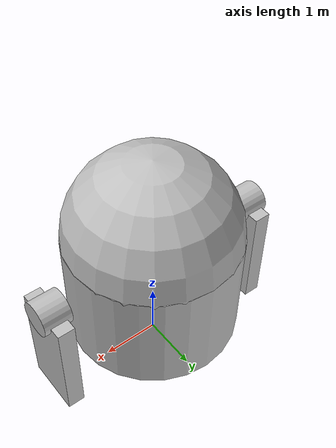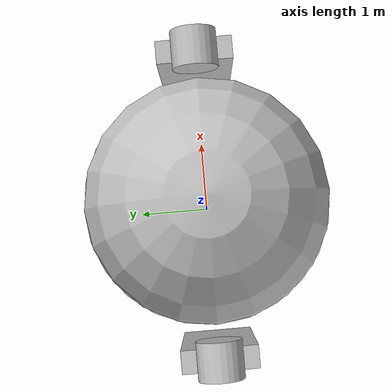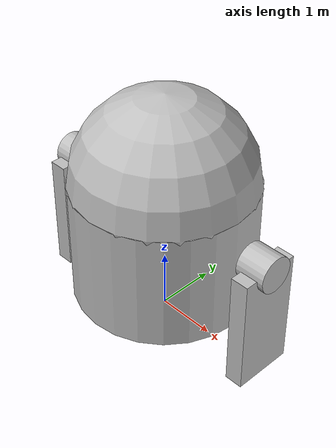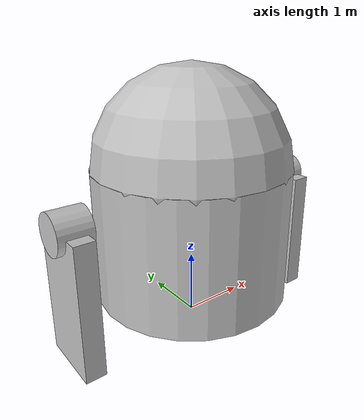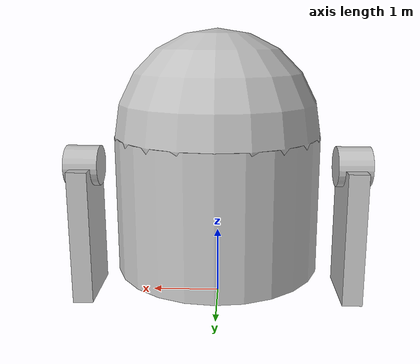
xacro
<?xml version="1.0"?>
<robot xmlns:xacro="http://www.ros.org/wiki/xacro" name="r2d2">

    <xacro:include filename="$(find r2d2_robot_description)/urdf/r2d2_leg.urdf.xacro"/>
    <xacro:include filename="$(find r2d2_robot_description)/urdf/r2d2_body.urdf.xacro"/>
    <xacro:include filename="$(find r2d2_robot_description)/urdf/r2d2_control.urdf.xacro"/>

    <xacro:include filename="$(find r2d2_robot_description)/urdf/general_macros.xacro"/>
    <xacro:include filename="$(find r2d2_robot_description)/urdf/materials.xacro"/>

    <link name="base_unit">
        <pose>0 0 0 0 0 0</pose>
    </link>

    <xacro:body/>

    <xacro:leg side='right'/>
    <xacro:leg side='left'/>

    <xacro:control hardware_flag='rviz'/>

</robot>

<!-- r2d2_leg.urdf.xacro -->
<robot xmlns:xacro="http://www.ros.org/wiki/xacro" name="r2d2">

    <xacro:macro name="leg" params="side">

        <link name="${side}_leg_top_link">
            <inertial>
                <origin xyz="0.0 0.0 0.0" rpy="0.0 0.0 0.0"/>
                <mass value="5.0"/>
                <inertia ixx="0.0" ixy="0.0" ixz="0.0" iyy="0.0" iyz="0.0" izz="0.0"/>
            </inertial>
            <visual name="${side}_leg_top_link_visual">
                <origin xyz="0.0 0.0 0.0" rpy="1.5707 0.0 1.5707"/>
                <geometry>
                    <cylinder radius="0.3" length="0.5"/>
                </geometry>
                <material name="silver"/>
            </visual>
            <collision name="${side}_leg_top_link_collision">
                <origin xyz="0.0 0.0 0.0" rpy="1.5707 0.0 1.5707"/>
                <geometry>
                    <cylinder radius="0.3" length="0.5"/>
                </geometry>
            </collision>
        </link>

        <link name="${side}_leg_middle_link">
            <inertial>
                <origin xyz="0.0 0.0 0.0" rpy="0.0 0.0 0.0"/>
                <mass value="10.0"/>
                <inertia ixx="0.0" ixy="0.0" ixz="0.0" iyy="0.0" iyz="0.0" izz="0.0"/>
            </inertial>
            <visual name="${side}_leg_middle_link_visual">
                <origin xyz="0.0 0.0 0.0" rpy="0.0 0.0 0.0"/>
                <geometry>
                    <box size="0.3 1.0 2.0"/>
                </geometry>
                <material name="silver"/>
            </visual>
            <collision name="${side}_leg_middle_link_collision">
                <origin xyz="0.0 0.0 0.0" rpy="0.0 0.0 0.0"/>
                <geometry>
                    <box size="0.3 1.0 2.0"/>
                </geometry>
            </collision>
        </link>

        <joint name="${side}_top_joint" type="fixed">
            <xacro:if value='${side == "right"}'>
                <origin xyz="2.0 0.0 0.5" rpy="0.0 0.0 0.0"/>
            </xacro:if>
            <xacro:unless value='${side == "right"}'>
                <origin xyz="-2.0 0.0 0.5" rpy="0.0 0.0 0.0"/>
            </xacro:unless>
            <parent link="bottom_body"/>
            <child link="${side}_leg_top_link"/>
            <axis xyz="1.0 0.0 0.0"/>
        </joint>

        <joint name="${side}_middle_joint" type="fixed">
            <origin xyz="0.0 0.0 -1.0" rpy="0.0 0.0 0.0"/>
            <parent link="${side}_leg_top_link"/>
            <child link="${side}_leg_middle_link"/>
            <axis xyz="0.0 0.0 0.0"/>
        </joint>

    </xacro:macro>

</robot>

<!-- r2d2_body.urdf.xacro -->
<robot xmlns:xacro="http://www.ros.org/wiki/xacro" name="r2d2">

    <xacro:macro name="body">

        <link name="top_body">
            <inertial>
                <origin xyz="0.0 0.0 0.0" rpy="0.0 0.0 0.0"/>
                <mass value="20.0"/>
                <inertia ixx="0.0" ixy="0.0" ixz="0.0" iyy="0.0" iyz="0.0" izz="0.0"/>
            </inertial>
            <visual name="top_body_visual">
                <origin xyz="0.0 0.0 0.0" rpy="0.0 0.0 0.0"/>
                <geometry>
                    <sphere radius="1.5"/>
                </geometry>
                <material name="silver"/>
            </visual>
            <collision name='top_body_collision'>
                <origin xyz="0.0 0.0 0.0" rpy="0.0 0.0 0.0"/>
                <geometry>
                    <sphere radius="1.5"/>
                </geometry>
            </collision>
        </link>

        <link name="bottom_body">
            <pose>0 0 0 0 0 0</pose>
            <inertial>
                <origin xyz="0.0 0.0 0.0" rpy="0.0 0.0 0.0"/>
                <mass value="30.0"/>
                <inertia ixx="0.0" ixy="0.0" ixz="0.0" iyy="0.0" iyz="0.0" izz="0.0"/>
            </inertial>
            <visual name="bottom_body_visual">
                <origin xyz="0.0 0.0 0.0" rpy="0.0 0.0 0.0"/>
                <geometry>
                    <cylinder radius="1.5" length="2.0"/>
                </geometry>
                <material name="silver"/>
            </visual>
            <collision name='bottom_body_collision'>
                <origin xyz="0.0 0.0 0.0" rpy="0.0 0.0 0.0"/>
                <geometry>
                    <cylinder radius="1.5" length="2.0"/>
                </geometry>
            </collision>
        </link>

        <joint name="head_joint" type="revolute">
            <parent link="bottom_body"/>
            <child link="top_body"/>
            <origin xyz="0.0 0.0 1.0" rpy="0.0 0.0 0.0"/>
            <limit lower="-1.0" upper="1.0" effort="0.0" velocity="1.0"/>
        </joint>

        <joint name="base_joint" type="fixed">
            <parent link="base_unit"/>
            <child link="bottom_body"/>
            <origin xyz="0.0 0.0 1.5" rpy="0.0 0.0 0.0"/>
        </joint>

    </xacro:macro>

</robot>

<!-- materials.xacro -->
<robot xmlns:xacro="http://www.ros.org/wiki/xacro" name="r2d2">

    <material name="red">
        <color rgba="1.0 0.0 0.0 1.0"/>
    </material>

    <material name="blue">
        <color rgba="0.0 0.0 1.0 1.0"/>
    </material>

    <material name="green">
        <color rgba="0.0 1.0 0.0 1.0"/>
    </material>

    <material name="silver">
        <color rgba="${192/255} ${192/255} ${192/255} 1.0"/>
    </material>

    <material name="black">
        <color rgba="0.0 0.0 0.0 1.0"/>
    </material>
</robot>
